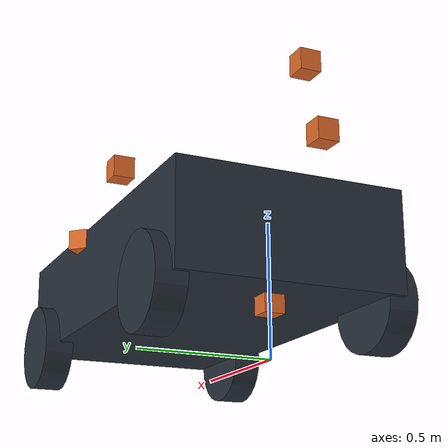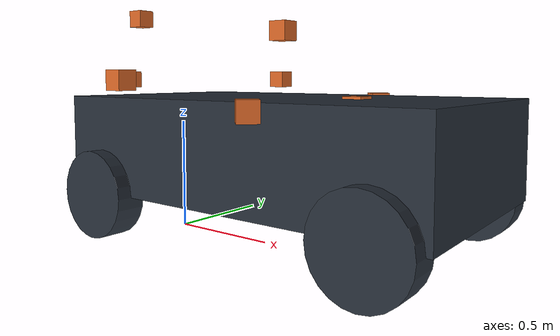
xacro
<?xml version="1.0"?>
<robot name="aris" xmlns:xacro="http://www.ros.org/wiki/xacro">

  <!-- Confirmed kinematics. Calibrate max_steer on the real vehicle and update here. -->
  <xacro:property name="wheelbase" value="1.25"/>   <!-- m, rear axle to front axle -->
  <xacro:property name="max_steer" value="0.6"/>    <!-- rad, steering limit -->
  <xacro:property name="track" value="0.9"/>        <!-- m, approximate wheel track -->
  <xacro:property name="body_length" value="${wheelbase + 0.4}"/>
  <xacro:property name="body_width" value="${track}"/>
  <xacro:property name="body_height" value="0.4"/>
  <xacro:property name="body_mass" value="80.0"/>
  <xacro:property name="sensor_mass" value="0.5"/>
  <xacro:property name="wheel_radius" value="0.18"/>
  <xacro:property name="wheel_width" value="0.12"/>
  <xacro:property name="wheel_mass" value="2.0"/>
  <xacro:property name="wheel_center_z" value="${wheel_radius + 0.05}"/>
  <xacro:property name="body_center_z" value="${wheel_center_z + body_height / 2.0}"/>

  <!-- Injects simulation-only additions (Gazebo sensor plugins) without touching
       the kinematics/TF that the real vehicle also relies on. -->
  <xacro:arg name="use_sim" default="true"/>

  <material name="aris_body"><color rgba="0.15 0.18 0.22 1.0"/></material>
  <material name="aris_sensor"><color rgba="0.85 0.40 0.15 1.0"/></material>

  <xacro:macro name="box_inertial" params="mass x y z">
    <inertial>
      <mass value="${mass}"/>
      <inertia
        ixx="${mass * (y * y + z * z) / 12.0}"
        ixy="0.0"
        ixz="0.0"
        iyy="${mass * (x * x + z * z) / 12.0}"
        iyz="0.0"
        izz="${mass * (x * x + y * y) / 12.0}"/>
    </inertial>
  </xacro:macro>

  <xacro:macro name="wheel_inertial" params="mass radius width">
    <inertial>
      <mass value="${mass}"/>
      <inertia
        ixx="${mass * (3.0 * radius * radius + width * width) / 12.0}"
        ixy="0.0"
        ixz="0.0"
        iyy="${mass * radius * radius / 2.0}"
        iyz="0.0"
        izz="${mass * (3.0 * radius * radius + width * width) / 12.0}"/>
    </inertial>
  </xacro:macro>

  <!-- Vehicle base frame: origin at the rear axle on the ground plane. -->
  <link name="base_link">
    <xacro:box_inertial mass="${body_mass}" x="${body_length}" y="${body_width}" z="${body_height}"/>
    <visual>
      <origin xyz="${wheelbase/2} 0 ${body_center_z}" rpy="0 0 0"/>
      <geometry><box size="${body_length} ${body_width} ${body_height}"/></geometry>
      <material name="aris_body"/>
    </visual>
    <collision>
      <origin xyz="${wheelbase/2} 0 ${body_center_z}" rpy="0 0 0"/>
      <geometry><box size="${body_length} ${body_width} ${body_height}"/></geometry>
    </collision>
  </link>

  <!-- Fixed sensor frame with a small visual marker. -->
  <xacro:macro name="sensor_frame" params="name xyz rpy">
    <link name="${name}">
      <xacro:box_inertial mass="${sensor_mass}" x="0.08" y="0.08" z="0.08"/>
      <visual>
        <geometry><box size="0.08 0.08 0.08"/></geometry>
        <material name="aris_sensor"/>
      </visual>
      <collision>
        <geometry><box size="0.08 0.08 0.08"/></geometry>
      </collision>
    </link>
    <joint name="${name}_joint" type="fixed">
      <parent link="base_link"/>
      <child link="${name}"/>
      <origin xyz="${xyz}" rpy="${rpy}"/>
    </joint>
  </xacro:macro>

  <!-- Extrinsic calibration (PDF ch5). Initial estimates; refine with
       LiDAR<->camera calibration on the real vehicle and commit back here. -->
  <xacro:sensor_frame name="lidar_link"        xyz="0.6 0 0.9"     rpy="0 0 0"/>
  <xacro:sensor_frame name="imu_link"          xyz="0.0 0 0.2"     rpy="0 0 0"/>
  <xacro:sensor_frame name="gps_link"          xyz="-0.3 0 1.0"    rpy="0 0 0"/>
  <xacro:sensor_frame name="camera_front_link" xyz="0.95 0 0.6"    rpy="0 0 0"/>
  <xacro:sensor_frame name="camera_fl_link"    xyz="0.8 0.45 0.6"  rpy="0 0 0.785"/>
  <xacro:sensor_frame name="camera_fr_link"    xyz="0.8 -0.45 0.6" rpy="0 0 -0.785"/>
  <xacro:sensor_frame name="camera_left_link"  xyz="0.2 0.5 0.7"   rpy="0 0 1.571"/>
  <xacro:sensor_frame name="camera_right_link" xyz="0.2 -0.5 0.7"  rpy="0 0 -1.571"/>
  <xacro:sensor_frame name="camera_rear_link"  xyz="-0.4 0 0.7"    rpy="0 0 3.142"/>

  <xacro:if value="$(arg use_sim)">
    <xacro:macro name="wheel_link" params="name">
      <link name="${name}">
        <xacro:wheel_inertial mass="${wheel_mass}" radius="${wheel_radius}" width="${wheel_width}"/>
        <visual>
          <origin xyz="0 0 0" rpy="1.57079632679 0 0"/>
          <geometry><cylinder radius="${wheel_radius}" length="${wheel_width}"/></geometry>
          <material name="aris_body"/>
        </visual>
        <collision>
          <origin xyz="0 0 0" rpy="1.57079632679 0 0"/>
          <geometry><cylinder radius="${wheel_radius}" length="${wheel_width}"/></geometry>
        </collision>
      </link>
    </xacro:macro>

    <xacro:macro name="rear_wheel" params="prefix y">
      <xacro:wheel_link name="${prefix}_wheel_link"/>
      <joint name="${prefix}_wheel_joint" type="continuous">
        <parent link="base_link"/>
        <child link="${prefix}_wheel_link"/>
        <origin xyz="0 ${y} ${wheel_center_z}" rpy="0 0 0"/>
        <axis xyz="0 1 0"/>
        <dynamics damping="0.05" friction="0.0"/>
      </joint>
    </xacro:macro>

    <xacro:macro name="front_wheel" params="prefix y">
      <link name="${prefix}_steer_link">
        <xacro:box_inertial mass="0.2" x="0.04" y="0.04" z="0.04"/>
      </link>
      <joint name="${prefix}_steer_joint" type="revolute">
        <parent link="base_link"/>
        <child link="${prefix}_steer_link"/>
        <origin xyz="${wheelbase} ${y} ${wheel_center_z}" rpy="0 0 0"/>
        <axis xyz="0 0 1"/>
        <limit lower="${-max_steer}" upper="${max_steer}" effort="100.0" velocity="2.0"/>
        <dynamics damping="0.2" friction="0.0"/>
      </joint>
      <xacro:wheel_link name="${prefix}_wheel_link"/>
      <joint name="${prefix}_wheel_joint" type="continuous">
        <parent link="${prefix}_steer_link"/>
        <child link="${prefix}_wheel_link"/>
        <origin xyz="0 0 0" rpy="0 0 0"/>
        <axis xyz="0 1 0"/>
        <dynamics damping="0.05" friction="0.0"/>
      </joint>
    </xacro:macro>

    <xacro:rear_wheel prefix="rear_left" y="${track / 2.0}"/>
    <xacro:rear_wheel prefix="rear_right" y="${-track / 2.0}"/>
    <xacro:front_wheel prefix="front_left" y="${track / 2.0}"/>
    <xacro:front_wheel prefix="front_right" y="${-track / 2.0}"/>

    <gazebo reference="lidar_link">
      <sensor name="gpu_lidar" type="gpu_lidar">
        <topic>scan_cloud</topic>
        <update_rate>10</update_rate>
        <lidar>
          <scan>
            <horizontal>
              <samples>640</samples>
              <resolution>1</resolution>
              <min_angle>-1.396263</min_angle>
              <max_angle>1.396263</max_angle>
            </horizontal>
            <vertical>
              <samples>16</samples>
              <resolution>1</resolution>
              <min_angle>-0.261799</min_angle>
              <max_angle>0.261799</max_angle>
            </vertical>
          </scan>
          <range>
            <min>0.08</min>
            <max>10.0</max>
            <resolution>0.01</resolution>
          </range>
        </lidar>
        <always_on>1</always_on>
        <visualize>false</visualize>
      </sensor>
    </gazebo>

    <gazebo>
      <plugin filename="gz-sim-ackermann-steering-system" name="gz::sim::systems::AckermannSteering">
        <left_joint>rear_left_wheel_joint</left_joint>
        <right_joint>rear_right_wheel_joint</right_joint>
        <left_steering_joint>front_left_steer_joint</left_steering_joint>
        <right_steering_joint>front_right_steer_joint</right_steering_joint>
        <wheel_base>${wheelbase}</wheel_base>
        <wheel_separation>${track}</wheel_separation>
        <kingpin_width>${track}</kingpin_width>
        <wheel_radius>${wheel_radius}</wheel_radius>
        <steering_limit>${max_steer}</steering_limit>
        <topic>/cmd_vel</topic>
        <odom_topic>/gazebo/odom</odom_topic>
        <tf_topic>/gazebo/tf</tf_topic>
        <frame_id>odom</frame_id>
        <child_frame_id>base_link</child_frame_id>
        <odom_publish_frequency>30</odom_publish_frequency>
      </plugin>
    </gazebo>
  </xacro:if>

</robot>
